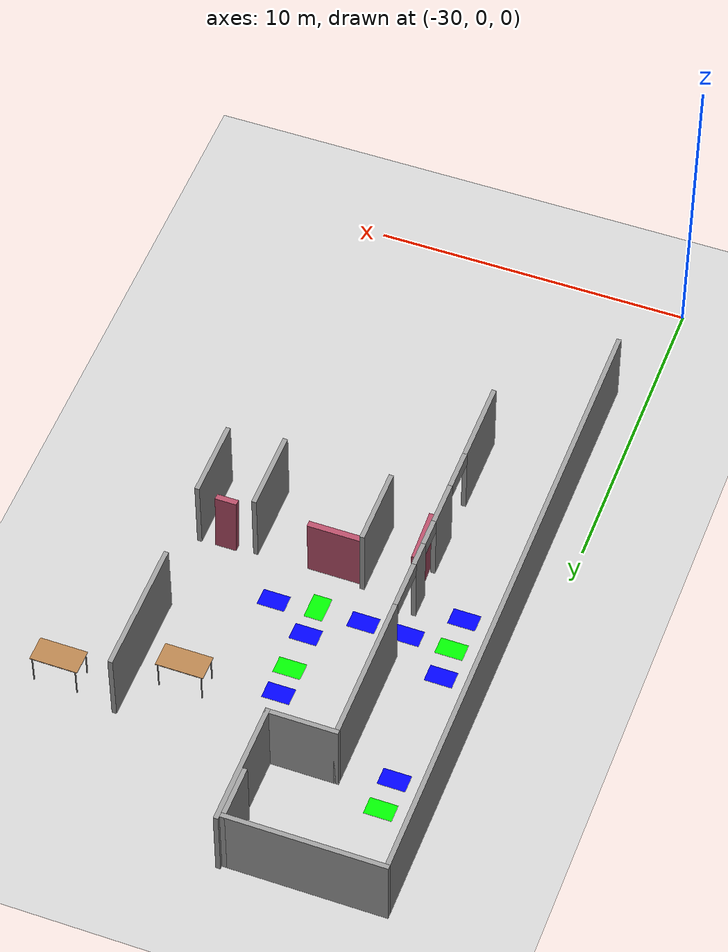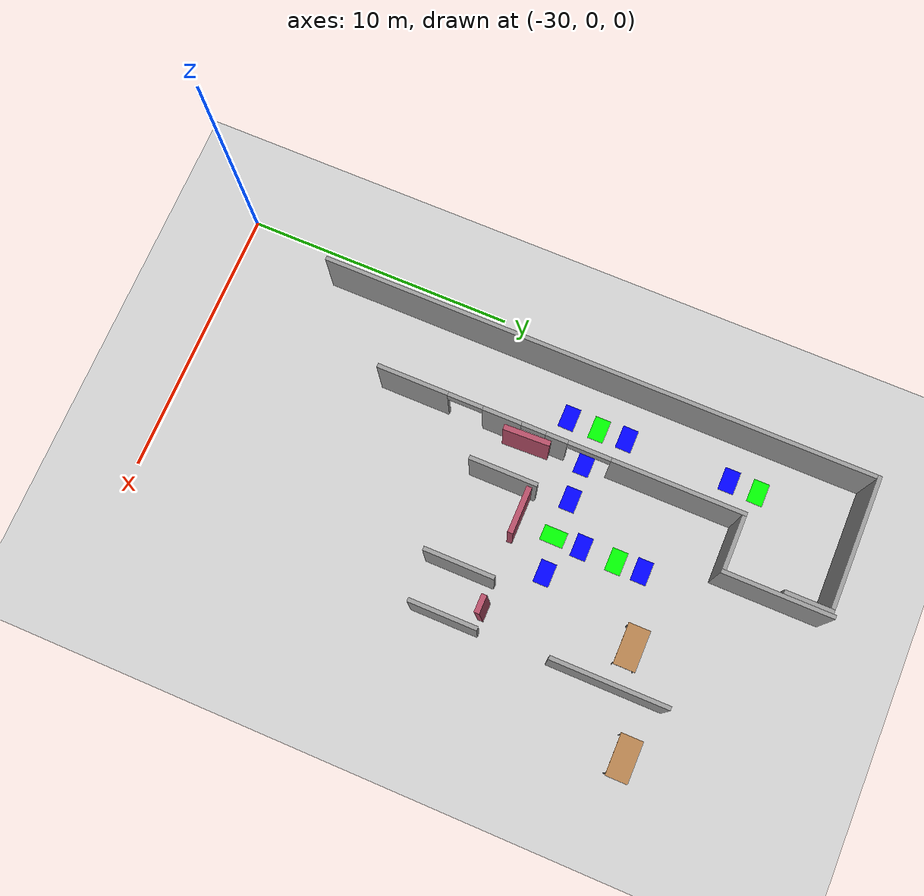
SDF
<sdf version="1.6">
 <world name="default">
  <model name="ground_plane">
   <pose>0 0 0.001 0 -0 0</pose>
   <static>1</static>
   <link name="link">
    <collision name="collision">
     <geometry><plane><normal>0 0 1</normal><size>100 100</size></plane></geometry>
     <surface><friction><ode><mu>100</mu><mu2>50</mu2></ode></friction></surface>
    </collision>
    <visual name="visual">
     <cast_shadows>0</cast_shadows>
     <geometry><plane><normal>0 0 1</normal><size>100 100</size></plane></geometry>
     <material>
      <script><uri>file://media/materials/scripts/gazebo.material</uri><name>Gazebo/Grey</name></script>
     </material>
    </visual>
   </link>
  </model>
  <model name="table">
   <static>1</static>
   <link name="link">
    <collision name="surface">
     <pose>0 0 1 0 -0 0</pose>
     <geometry><box><size>1.5 0.8 0.03</size></box></geometry>
     <surface><friction><ode><mu>0.6</mu><mu2>0.6</mu2></ode></friction></surface>
    </collision>
    <visual name="visual1">
     <pose>0 0 1 0 -0 0</pose>
     <geometry><box><size>1.5 0.8 0.03</size></box></geometry>
     <material>
      <script><uri>file://media/materials/scripts/gazebo.material</uri><name>Gazebo/Wood</name></script>
     </material>
    </visual>
    <collision name="front_left_leg">
     <pose>0.68 0.38 0.5 0 -0 0</pose>
     <geometry><cylinder><radius>0.02</radius><length>1</length></cylinder></geometry>
    </collision>
    <visual name="front_left_leg">
     <pose>0.68 0.38 0.5 0 -0 0</pose>
     <geometry><cylinder><radius>0.02</radius><length>1</length></cylinder></geometry>
     <material>
      <script><uri>file://media/materials/scripts/gazebo.material</uri><name>Gazebo/Grey</name></script>
     </material>
    </visual>
    <collision name="front_right_leg">
     <pose>0.68 -0.38 0.5 0 -0 0</pose>
     <geometry><cylinder><radius>0.02</radius><length>1</length></cylinder></geometry>
    </collision>
    <visual name="front_right_leg">
     <pose>0.68 -0.38 0.5 0 -0 0</pose>
     <geometry><cylinder><radius>0.02</radius><length>1</length></cylinder></geometry>
     <material>
      <script><uri>file://media/materials/scripts/gazebo.material</uri><name>Gazebo/Grey</name></script>
     </material>
    </visual>
    <collision name="back_right_leg">
     <pose>-0.68 -0.38 0.5 0 -0 0</pose>
     <geometry><cylinder><radius>0.02</radius><length>1</length></cylinder></geometry>
    </collision>
    <visual name="back_right_leg">
     <pose>-0.68 -0.38 0.5 0 -0 0</pose>
     <geometry><cylinder><radius>0.02</radius><length>1</length></cylinder></geometry>
     <material>
      <script><uri>file://media/materials/scripts/gazebo.material</uri><name>Gazebo/Grey</name></script>
     </material>
    </visual>
    <collision name="back_left_leg">
     <pose>-0.68 0.38 0.5 0 -0 0</pose>
     <geometry><cylinder><radius>0.02</radius><length>1</length></cylinder></geometry>
    </collision>
    <visual name="back_left_leg">
     <pose>-0.68 0.38 0.5 0 -0 0</pose>
     <geometry><cylinder><radius>0.02</radius><length>1</length></cylinder></geometry>
     <material>
      <script><uri>file://media/materials/scripts/gazebo.material</uri><name>Gazebo/Grey</name></script>
     </material>
    </visual>
   </link>
   <pose>-20.6493 18.5224 0.001 0 -0 0</pose>
  </model>
  <model name="table_0">
   <static>1</static>
   <link name="link">
    <collision name="surface">
     <pose>0 0 1 0 -0 0</pose>
     <geometry><box><size>1.5 0.8 0.03</size></box></geometry>
     <surface><friction><ode><mu>0.6</mu><mu2>0.6</mu2></ode></friction></surface>
    </collision>
    <visual name="visual1">
     <pose>0 0 1 0 -0 0</pose>
     <geometry><box><size>1.5 0.8 0.03</size></box></geometry>
     <material>
      <script><uri>file://media/materials/scripts/gazebo.material</uri><name>Gazebo/Wood</name></script>
     </material>
    </visual>
    <collision name="front_left_leg">
     <pose>0.68 0.38 0.5 0 -0 0</pose>
     <geometry><cylinder><radius>0.02</radius><length>1</length></cylinder></geometry>
    </collision>
    <visual name="front_left_leg">
     <pose>0.68 0.38 0.5 0 -0 0</pose>
     <geometry><cylinder><radius>0.02</radius><length>1</length></cylinder></geometry>
     <material>
      <script><uri>file://media/materials/scripts/gazebo.material</uri><name>Gazebo/Grey</name></script>
     </material>
    </visual>
    <collision name="front_right_leg">
     <pose>0.68 -0.38 0.5 0 -0 0</pose>
     <geometry><cylinder><radius>0.02</radius><length>1</length></cylinder></geometry>
    </collision>
    <visual name="front_right_leg">
     <pose>0.68 -0.38 0.5 0 -0 0</pose>
     <geometry><cylinder><radius>0.02</radius><length>1</length></cylinder></geometry>
     <material>
      <script><uri>file://media/materials/scripts/gazebo.material</uri><name>Gazebo/Grey</name></script>
     </material>
    </visual>
    <collision name="back_right_leg">
     <pose>-0.68 -0.38 0.5 0 -0 0</pose>
     <geometry><cylinder><radius>0.02</radius><length>1</length></cylinder></geometry>
    </collision>
    <visual name="back_right_leg">
     <pose>-0.68 -0.38 0.5 0 -0 0</pose>
     <geometry><cylinder><radius>0.02</radius><length>1</length></cylinder></geometry>
     <material>
      <script><uri>file://media/materials/scripts/gazebo.material</uri><name>Gazebo/Grey</name></script>
     </material>
    </visual>
    <collision name="back_left_leg">
     <pose>-0.68 0.38 0.5 0 -0 0</pose>
     <geometry><cylinder><radius>0.02</radius><length>1</length></cylinder></geometry>
    </collision>
    <visual name="back_left_leg">
     <pose>-0.68 0.38 0.5 0 -0 0</pose>
     <geometry><cylinder><radius>0.02</radius><length>1</length></cylinder></geometry>
     <material>
      <script><uri>file://media/materials/scripts/gazebo.material</uri><name>Gazebo/Grey</name></script>
     </material>
    </visual>
   </link>
   <pose>-17.1552 19.6086 0.001 0 -0 0</pose>
  </model>
  <model name="intersection_3">
   <link name="link">
    <pose>0 0 0.001 0 -0 0</pose>
    <inertial>
     <mass>0.0352517</mass>
     <inertia>
      <ixx>0.000997067</ixx>
      <ixy>0</ixy>
      <ixz>0</ixz>
      <iyy>0.00220147</iyy>
      <iyz>0</iyz>
      <izz>0.0031692</izz>
     </inertia>
     <pose>0 0 0.001 0 -0 0</pose>
    </inertial>
    <visual name="visual">
     <geometry><box><size>0.862743 0.578289 1e-06</size></box></geometry>
     <material>
      <script><name>Gazebo/Grey</name><uri>file://media/materials/scripts/gazebo.material</uri></script>
      <ambient>0 0 1 1</ambient>
      <diffuse>0 0 1 1</diffuse>
      <specular>0 0 1 1</specular>
      <emissive>0 0 1 1</emissive>
      <shader type="vertex"><normal_map>__default__</normal_map></shader>
     </material>
     <pose>0 0 0.001 0 -0 0</pose>
    </visual>
    <collision name="collision">
     <pose>0 0 0.001 0 -0 0</pose>
     <geometry><box><size>0.862743 0.578289 0.000477</size></box></geometry>
     <surface>
      <friction>
       <ode><mu>1</mu><mu2>1</mu2><fdir1>0 0 0</fdir1><slip1>0</slip1><slip2>0</slip2></ode>
       <torsional>
        <coefficient>1</coefficient>
        <patch_radius>0</patch_radius>
        <surface_radius>0</surface_radius>
        <use_patch_radius>1</use_patch_radius>
        <ode><slip>0</slip></ode>
       </torsional>
      </friction>
      <bounce><restitution_coefficient>0</restitution_coefficient><threshold>1e+06</threshold></bounce>
      <contact>
       <collide_without_contact>0</collide_without_contact>
       <collide_without_contact_bitmask>1</collide_without_contact_bitmask>
       <collide_bitmask>1</collide_bitmask>
       <ode>
        <soft_cfm>0</soft_cfm>
        <soft_erp>0.2</soft_erp>
        <kp>1e+13</kp>
        <kd>1</kd>
        <max_vel>0.01</max_vel>
        <min_depth>0</min_depth>
       </ode>
       <bullet>
        <split_impulse>1</split_impulse>
        <split_impulse_penetration_threshold>-0.01</split_impulse_penetration_threshold>
        <soft_cfm>0</soft_cfm>
        <soft_erp>0.2</soft_erp>
        <kp>1e+13</kp>
        <kd>1</kd>
       </bullet>
      </contact>
     </surface>
    </collision>
   </link>
   <static>1</static>
   <pose>-23.3338 15.7036 0 0 -0 0</pose>
  </model>
  <model name="doorOutside_2_clone">
   <link name="link">
    <pose>0.155539 -0.366282 0.216958 0 -0 0</pose>
    <inertial>
     <mass>2.13199</mass>
     <inertia>
      <ixx>0.452656</ixx>
      <ixy>0</ixy>
      <ixz>0</ixz>
      <iyy>0.796738</iyy>
      <iyz>0</iyz>
      <izz>0.699414</izz>
     </inertia>
     <pose>0 0 0.001 0 -0 0</pose>
    </inertial>
    <visual name="visual">
     <geometry><box><size>1.71368 0.198843 2.05986</size></box></geometry>
     <material>
      <script><name>Gazebo/Grey</name><uri>file://media/materials/scripts/gazebo.material</uri></script>
      <ambient>0.7 0.3 0.4 1</ambient>
      <diffuse>0.7 0.7 0.7 1</diffuse>
      <specular>0.01 0.01 0.01 1</specular>
      <emissive>0 0 0 1</emissive>
      <shader type="vertex"><normal_map>__default__</normal_map></shader>
      <lighting>0</lighting>
     </material>
     <pose>0 0 0.001 0 -0 0</pose>
    </visual>
    <collision name="collision">
     <pose>0 0 0.001 0 -0 0</pose>
     <geometry><box><size>1.71368 0.198843 2.05986</size></box></geometry>
     <surface>
      <friction>
       <ode><mu>1</mu><mu2>1</mu2><fdir1>0 0 0</fdir1><slip1>0</slip1><slip2>0</slip2></ode>
       <torsional>
        <coefficient>1</coefficient>
        <patch_radius>0</patch_radius>
        <surface_radius>0</surface_radius>
        <use_patch_radius>1</use_patch_radius>
        <ode><slip>0</slip></ode>
       </torsional>
      </friction>
      <bounce><restitution_coefficient>0</restitution_coefficient><threshold>1e+06</threshold></bounce>
      <contact>
       <collide_without_contact>0</collide_without_contact>
       <collide_without_contact_bitmask>1</collide_without_contact_bitmask>
       <collide_bitmask>1</collide_bitmask>
       <ode>
        <soft_cfm>0</soft_cfm>
        <soft_erp>0.2</soft_erp>
        <kp>1e+13</kp>
        <kd>1</kd>
        <max_vel>0.01</max_vel>
        <min_depth>0</min_depth>
       </ode>
       <bullet>
        <split_impulse>1</split_impulse>
        <split_impulse_penetration_threshold>-0.01</split_impulse_penetration_threshold>
        <soft_cfm>0</soft_cfm>
        <soft_erp>0.2</soft_erp>
        <kp>1e+13</kp>
        <kd>1</kd>
       </bullet>
      </contact>
     </surface>
    </collision>
   </link>
   <static>0</static>
   <pose>-26.2132 12.3617 0.81197 0 4e-06 1.60531</pose>
  </model>
  <model name="doorOutside_2_clone_0">
   <link name="link">
    <pose>0.155539 -0.366282 0.216958 0 -0 0</pose>
    <inertial>
     <mass>2.13199</mass>
     <inertia>
      <ixx>0.452656</ixx>
      <ixy>0</ixy>
      <ixz>0</ixz>
      <iyy>0.796738</iyy>
      <iyz>0</iyz>
      <izz>0.699414</izz>
     </inertia>
     <pose>0 0 0.001 0 -0 0</pose>
    </inertial>
    <visual name="visual">
     <geometry><box><size>1.71368 0.198843 2.05986</size></box></geometry>
     <material>
      <script><name>Gazebo/Grey</name><uri>file://media/materials/scripts/gazebo.material</uri></script>
      <ambient>0.7 0.3 0.4 1</ambient>
      <diffuse>0.7 0.7 0.7 1</diffuse>
      <specular>0.01 0.01 0.01 1</specular>
      <emissive>0 0 0 1</emissive>
      <shader type="vertex"><normal_map>__default__</normal_map></shader>
      <lighting>0</lighting>
     </material>
     <pose>0 0 0.001 0 -0 0</pose>
    </visual>
    <collision name="collision">
     <pose>0 0 0.001 0 -0 0</pose>
     <geometry><box><size>1.71368 0.198843 2.05986</size></box></geometry>
     <surface>
      <friction>
       <ode><mu>1</mu><mu2>1</mu2><fdir1>0 0 0</fdir1><slip1>0</slip1><slip2>0</slip2></ode>
       <torsional>
        <coefficient>1</coefficient>
        <patch_radius>0</patch_radius>
        <surface_radius>0</surface_radius>
        <use_patch_radius>1</use_patch_radius>
        <ode><slip>0</slip></ode>
       </torsional>
      </friction>
      <bounce><restitution_coefficient>0</restitution_coefficient><threshold>1e+06</threshold></bounce>
      <contact>
       <collide_without_contact>0</collide_without_contact>
       <collide_without_contact_bitmask>1</collide_without_contact_bitmask>
       <collide_bitmask>1</collide_bitmask>
       <ode>
        <soft_cfm>0</soft_cfm>
        <soft_erp>0.2</soft_erp>
        <kp>1e+13</kp>
        <kd>1</kd>
        <max_vel>0.01</max_vel>
        <min_depth>0</min_depth>
       </ode>
       <bullet>
        <split_impulse>1</split_impulse>
        <split_impulse_penetration_threshold>-0.01</split_impulse_penetration_threshold>
        <soft_cfm>0</soft_cfm>
        <soft_erp>0.2</soft_erp>
        <kp>1e+13</kp>
        <kd>1</kd>
       </bullet>
      </contact>
     </surface>
    </collision>
   </link>
   <static>0</static>
   <pose>-23.205 12.9227 0.811967 0 -5e-06 3.14136</pose>
  </model>
  <model name="doorInside_1">
   <link name="link">
    <pose>0.712274 -0.220649 0.216958 0 -0 0</pose>
    <inertial>
     <mass>0.840612</mass>
     <inertia>
      <ixx>0.178476</ixx>
      <ixy>0</ixy>
      <ixz>0</ixz>
      <iyy>0.140406</iyy>
      <iyz>0</iyz>
      <izz>0.102032</izz>
     </inertia>
     <pose>0 0 0.001 0 -0 0</pose>
    </inertial>
    <visual name="visual">
     <geometry><box><size>0.675678 0.198843 2.05986</size></box></geometry>
     <material>
      <script><name>Gazebo/Grey</name><uri>file://media/materials/scripts/gazebo.material</uri></script>
      <ambient>0.7 0.3 0.4 1</ambient>
      <diffuse>0.7 0.7 0.7 1</diffuse>
      <specular>0.01 0.01 0.01 1</specular>
      <emissive>1 0 0 1</emissive>
      <shader type="vertex"><normal_map>__default__</normal_map></shader>
      <lighting>0</lighting>
     </material>
     <pose>0 0 0.001 0 -0 0</pose>
    </visual>
    <collision name="collision">
     <pose>0 0 0.001 0 -0 0</pose>
     <geometry><box><size>0.675678 0.198843 2.05986</size></box></geometry>
     <surface>
      <friction>
       <ode><mu>1</mu><mu2>1</mu2><fdir1>0 0 0</fdir1><slip1>0</slip1><slip2>0</slip2></ode>
       <torsional>
        <coefficient>1</coefficient>
        <patch_radius>0</patch_radius>
        <surface_radius>0</surface_radius>
        <use_patch_radius>1</use_patch_radius>
        <ode><slip>0</slip></ode>
       </torsional>
      </friction>
      <bounce><restitution_coefficient>0</restitution_coefficient><threshold>1e+06</threshold></bounce>
      <contact>
       <collide_without_contact>0</collide_without_contact>
       <collide_without_contact_bitmask>1</collide_without_contact_bitmask>
       <collide_bitmask>1</collide_bitmask>
       <ode>
        <soft_cfm>0</soft_cfm>
        <soft_erp>0.2</soft_erp>
        <kp>1e+13</kp>
        <kd>1</kd>
        <max_vel>0.01</max_vel>
        <min_depth>0</min_depth>
       </ode>
       <bullet>
        <split_impulse>1</split_impulse>
        <split_impulse_penetration_threshold>-0.01</split_impulse_penetration_threshold>
        <soft_cfm>0</soft_cfm>
        <soft_erp>0.2</soft_erp>
        <kp>1e+13</kp>
        <kd>1</kd>
       </bullet>
      </contact>
     </surface>
    </collision>
   </link>
   <static>0</static>
   <pose>-20.6352 13.5916 0.830944 0.064612 0 1e-06</pose>
  </model>
  <model name="corridor">
   <link name="link">
    <pose>0 0 0.001 0 -0 0</pose>
    <inertial>
     <mass>0.0352517</mass>
     <inertia>
      <ixx>0.00099707</ixx>
      <ixy>0</ixy>
      <ixz>0</ixz>
      <iyy>0.00220147</iyy>
      <iyz>0</iyz>
      <izz>0.0031692</izz>
     </inertia>
     <pose>0 0 0.001 0 -0 0</pose>
    </inertial>
    <visual name="visual">
     <geometry><box><size>0.862743 0.578289 1e-06</size></box></geometry>
     <material>
      <script><name>Gazebo/Grey</name><uri>file://media/materials/scripts/gazebo.material</uri></script>
      <ambient>0 1 0 1</ambient>
      <diffuse>0 1 0 1</diffuse>
      <specular>0 1 0 1</specular>
      <emissive>0 1 0 1</emissive>
      <shader type="vertex"><normal_map>__default__</normal_map></shader>
     </material>
     <pose>0 0 0.001 0 -0 0</pose>
    </visual>
    <collision name="collision">
     <pose>0 0 0.001 0 -0 0</pose>
     <geometry><box><size>0.862743 0.578289 0.000477</size></box></geometry>
     <surface>
      <friction>
       <ode><mu>1</mu><mu2>1</mu2><fdir1>0 0 0</fdir1><slip1>0</slip1><slip2>0</slip2></ode>
       <torsional>
        <coefficient>1</coefficient>
        <patch_radius>0</patch_radius>
        <surface_radius>0</surface_radius>
        <use_patch_radius>1</use_patch_radius>
        <ode><slip>0</slip></ode>
       </torsional>
      </friction>
      <bounce><restitution_coefficient>0</restitution_coefficient><threshold>1e+06</threshold></bounce>
      <contact>
       <collide_without_contact>0</collide_without_contact>
       <collide_without_contact_bitmask>1</collide_without_contact_bitmask>
       <collide_bitmask>1</collide_bitmask>
       <ode>
        <soft_cfm>0</soft_cfm>
        <soft_erp>0.2</soft_erp>
        <kp>1e+13</kp>
        <kd>1</kd>
        <max_vel>0.01</max_vel>
        <min_depth>0</min_depth>
       </ode>
       <bullet>
        <split_impulse>1</split_impulse>
        <split_impulse_penetration_threshold>-0.01</split_impulse_penetration_threshold>
        <soft_cfm>0</soft_cfm>
        <soft_erp>0.2</soft_erp>
        <kp>1e+13</kp>
        <kd>1</kd>
       </bullet>
      </contact>
     </surface>
    </collision>
   </link>
   <static>1</static>
   <pose>-27.5631 20.7542 0 0 -0 0</pose>
  </model>
  <model name="corridor_0">
   <link name="link">
    <pose>0 0 0.001 0 -0 0</pose>
    <inertial>
     <mass>0.0352517</mass>
     <inertia>
      <ixx>0.00099707</ixx>
      <ixy>0</ixy>
      <ixz>0</ixz>
      <iyy>0.00220147</iyy>
      <iyz>0</iyz>
      <izz>0.0031692</izz>
     </inertia>
     <pose>0 0 0.001 0 -0 0</pose>
    </inertial>
    <visual name="visual">
     <geometry><box><size>0.862743 0.578289 1e-06</size></box></geometry>
     <material>
      <script><name>Gazebo/Grey</name><uri>file://media/materials/scripts/gazebo.material</uri></script>
      <ambient>0 1 0 1</ambient>
      <diffuse>0 1 0 1</diffuse>
      <specular>0 1 0 1</specular>
      <emissive>0 1 0 1</emissive>
      <shader type="vertex"><normal_map>__default__</normal_map></shader>
     </material>
     <pose>0 0 0.001 0 -0 0</pose>
    </visual>
    <collision name="collision">
     <pose>0 0 0.001 0 -0 0</pose>
     <geometry><box><size>0.862743 0.578289 0.000477</size></box></geometry>
     <surface>
      <friction>
       <ode><mu>1</mu><mu2>1</mu2><fdir1>0 0 0</fdir1><slip1>0</slip1><slip2>0</slip2></ode>
       <torsional>
        <coefficient>1</coefficient>
        <patch_radius>0</patch_radius>
        <surface_radius>0</surface_radius>
        <use_patch_radius>1</use_patch_radius>
        <ode><slip>0</slip></ode>
       </torsional>
      </friction>
      <bounce><restitution_coefficient>0</restitution_coefficient><threshold>1e+06</threshold></bounce>
      <contact>
       <collide_without_contact>0</collide_without_contact>
       <collide_without_contact_bitmask>1</collide_without_contact_bitmask>
       <collide_bitmask>1</collide_bitmask>
       <ode>
        <soft_cfm>0</soft_cfm>
        <soft_erp>0.2</soft_erp>
        <kp>1e+13</kp>
        <kd>1</kd>
        <max_vel>0.01</max_vel>
        <min_depth>0</min_depth>
       </ode>
       <bullet>
        <split_impulse>1</split_impulse>
        <split_impulse_penetration_threshold>-0.01</split_impulse_penetration_threshold>
        <soft_cfm>0</soft_cfm>
        <soft_erp>0.2</soft_erp>
        <kp>1e+13</kp>
        <kd>1</kd>
       </bullet>
      </contact>
     </surface>
    </collision>
   </link>
   <static>1</static>
   <pose>-27.5417 14.7047 0 0 -0 0</pose>
  </model>
  <model name="corridor_22">
   <link name="link">
    <pose>0 0 0.001 0 -0 0</pose>
    <inertial>
     <mass>0.0352517</mass>
     <inertia>
      <ixx>0.00099707</ixx>
      <ixy>0</ixy>
      <ixz>0</ixz>
      <iyy>0.00220147</iyy>
      <iyz>0</iyz>
      <izz>0.0031692</izz>
     </inertia>
     <pose>0 0 0.001 0 -0 0</pose>
    </inertial>
    <visual name="visual">
     <geometry><box><size>0.862743 0.578289 1e-06</size></box></geometry>
     <material>
      <script><name>Gazebo/Grey</name><uri>file://media/materials/scripts/gazebo.material</uri></script>
      <ambient>0 1 0 1</ambient>
      <diffuse>0 1 0 1</diffuse>
      <specular>0 1 0 1</specular>
      <emissive>0 1 0 1</emissive>
      <shader type="vertex"><normal_map>__default__</normal_map></shader>
     </material>
     <pose>0 0 0.001 0 -0 0</pose>
    </visual>
    <collision name="collision">
     <pose>0 0 0.001 0 -0 0</pose>
     <geometry><box><size>0.862743 0.578289 0.000477</size></box></geometry>
     <surface>
      <friction>
       <ode><mu>1</mu><mu2>1</mu2><fdir1>0 0 0</fdir1><slip1>0</slip1><slip2>0</slip2></ode>
       <torsional>
        <coefficient>1</coefficient>
        <patch_radius>0</patch_radius>
        <surface_radius>0</surface_radius>
        <use_patch_radius>1</use_patch_radius>
        <ode><slip>0</slip></ode>
       </torsional>
      </friction>
      <bounce><restitution_coefficient>0</restitution_coefficient><threshold>1e+06</threshold></bounce>
      <contact>
       <collide_without_contact>0</collide_without_contact>
       <collide_without_contact_bitmask>1</collide_without_contact_bitmask>
       <collide_bitmask>1</collide_bitmask>
       <ode>
        <soft_cfm>0</soft_cfm>
        <soft_erp>0.2</soft_erp>
        <kp>1e+13</kp>
        <kd>1</kd>
        <max_vel>0.01</max_vel>
        <min_depth>0</min_depth>
       </ode>
       <bullet>
        <split_impulse>1</split_impulse>
        <split_impulse_penetration_threshold>-0.01</split_impulse_penetration_threshold>
        <soft_cfm>0</soft_cfm>
        <soft_erp>0.2</soft_erp>
        <kp>1e+13</kp>
        <kd>1</kd>
       </bullet>
      </contact>
     </surface>
    </collision>
   </link>
   <static>1</static>
   <pose>-23.3171 14.6521 0 0 0 -1.57432</pose>
  </model>
  <model name="intersection_29">
   <link name="link">
    <pose>0 0 0.001 0 -0 0</pose>
    <inertial>
     <mass>0.0352517</mass>
     <inertia>
      <ixx>0.000997067</ixx>
      <ixy>0</ixy>
      <ixz>0</ixz>
      <iyy>0.00220147</iyy>
      <iyz>0</iyz>
      <izz>0.0031692</izz>
     </inertia>
     <pose>0 0 0.001 0 -0 0</pose>
    </inertial>
    <visual name="visual">
     <geometry><box><size>0.862743 0.578289 1e-06</size></box></geometry>
     <material>
      <script><name>Gazebo/Grey</name><uri>file://media/materials/scripts/gazebo.material</uri></script>
      <ambient>0 0 1 1</ambient>
      <diffuse>0 0 1 1</diffuse>
      <specular>0 0 1 1</specular>
      <emissive>0 0 1 1</emissive>
      <shader type="vertex"><normal_map>__default__</normal_map></shader>
     </material>
     <pose>0 0 0.001 0 -0 0</pose>
    </visual>
    <collision name="collision">
     <pose>0 0 0.001 0 -0 0</pose>
     <geometry><box><size>0.862743 0.578289 0.000477</size></box></geometry>
     <surface>
      <friction>
       <ode><mu>1</mu><mu2>1</mu2><fdir1>0 0 0</fdir1><slip1>0</slip1><slip2>0</slip2></ode>
       <torsional>
        <coefficient>1</coefficient>
        <patch_radius>0</patch_radius>
        <surface_radius>0</surface_radius>
        <use_patch_radius>1</use_patch_radius>
        <ode><slip>0</slip></ode>
       </torsional>
      </friction>
      <bounce><restitution_coefficient>0</restitution_coefficient><threshold>1e+06</threshold></bounce>
      <contact>
       <collide_without_contact>0</collide_without_contact>
       <collide_without_contact_bitmask>1</collide_without_contact_bitmask>
       <collide_bitmask>1</collide_bitmask>
       <ode>
        <soft_cfm>0</soft_cfm>
        <soft_erp>0.2</soft_erp>
        <kp>1e+13</kp>
        <kd>1</kd>
        <max_vel>0.01</max_vel>
        <min_depth>0</min_depth>
       </ode>
       <bullet>
        <split_impulse>1</split_impulse>
        <split_impulse_penetration_threshold>-0.01</split_impulse_penetration_threshold>
        <soft_cfm>0</soft_cfm>
        <soft_erp>0.2</soft_erp>
        <kp>1e+13</kp>
        <kd>1</kd>
       </bullet>
      </contact>
     </surface>
    </collision>
   </link>
   <static>1</static>
   <pose>-27.5317 13.5615 0 0 -0 0</pose>
  </model>
  <model name="intersection_31">
   <link name="link">
    <pose>0 0 0.001 0 -0 0</pose>
    <inertial>
     <mass>0.0352517</mass>
     <inertia>
      <ixx>0.000997067</ixx>
      <ixy>0</ixy>
      <ixz>0</ixz>
      <iyy>0.00220147</iyy>
      <iyz>0</iyz>
      <izz>0.0031692</izz>
     </inertia>
     <pose>0 0 0.001 0 -0 0</pose>
    </inertial>
    <visual name="visual">
     <geometry><box><size>0.862743 0.578289 1e-06</size></box></geometry>
     <material>
      <script><name>Gazebo/Grey</name><uri>file://media/materials/scripts/gazebo.material</uri></script>
      <ambient>0 0 1 1</ambient>
      <diffuse>0 0 1 1</diffuse>
      <specular>0 0 1 1</specular>
      <emissive>0 0 1 1</emissive>
      <shader type="vertex"><normal_map>__default__</normal_map></shader>
     </material>
     <pose>0 0 0.001 0 -0 0</pose>
    </visual>
    <collision name="collision">
     <pose>0 0 0.001 0 -0 0</pose>
     <geometry><box><size>0.862743 0.578289 0.000477</size></box></geometry>
     <surface>
      <friction>
       <ode><mu>1</mu><mu2>1</mu2><fdir1>0 0 0</fdir1><slip1>0</slip1><slip2>0</slip2></ode>
       <torsional>
        <coefficient>1</coefficient>
        <patch_radius>0</patch_radius>
        <surface_radius>0</surface_radius>
        <use_patch_radius>1</use_patch_radius>
        <ode><slip>0</slip></ode>
       </torsional>
      </friction>
      <bounce><restitution_coefficient>0</restitution_coefficient><threshold>1e+06</threshold></bounce>
      <contact>
       <collide_without_contact>0</collide_without_contact>
       <collide_without_contact_bitmask>1</collide_without_contact_bitmask>
       <collide_bitmask>1</collide_bitmask>
       <ode>
        <soft_cfm>0</soft_cfm>
        <soft_erp>0.2</soft_erp>
        <kp>1e+13</kp>
        <kd>1</kd>
        <max_vel>0.01</max_vel>
        <min_depth>0</min_depth>
       </ode>
       <bullet>
        <split_impulse>1</split_impulse>
        <split_impulse_penetration_threshold>-0.01</split_impulse_penetration_threshold>
        <soft_cfm>0</soft_cfm>
        <soft_erp>0.2</soft_erp>
        <kp>1e+13</kp>
        <kd>1</kd>
       </bullet>
      </contact>
     </surface>
    </collision>
   </link>
   <static>1</static>
   <pose>-27.5907 15.7521 0 0 -0 0</pose>
  </model>
  <model name="intersection_32">
   <link name="link">
    <pose>0 0 0.001 0 -0 0</pose>
    <inertial>
     <mass>0.0352517</mass>
     <inertia>
      <ixx>0.000997067</ixx>
      <ixy>0</ixy>
      <ixz>0</ixz>
      <iyy>0.00220147</iyy>
      <iyz>0</iyz>
      <izz>0.0031692</izz>
     </inertia>
     <pose>0 0 0.001 0 -0 0</pose>
    </inertial>
    <visual name="visual">
     <geometry><box><size>0.862743 0.578289 1e-06</size></box></geometry>
     <material>
      <script><name>Gazebo/Grey</name><uri>file://media/materials/scripts/gazebo.material</uri></script>
      <ambient>0 0 1 1</ambient>
      <diffuse>0 0 1 1</diffuse>
      <specular>0 0 1 1</specular>
      <emissive>0 0 1 1</emissive>
      <shader type="vertex"><normal_map>__default__</normal_map></shader>
     </material>
     <pose>0 0 0.001 0 -0 0</pose>
    </visual>
    <collision name="collision">
     <pose>0 0 0.001 0 -0 0</pose>
     <geometry><box><size>0.862743 0.578289 0.000477</size></box></geometry>
     <surface>
      <friction>
       <ode><mu>1</mu><mu2>1</mu2><fdir1>0 0 0</fdir1><slip1>0</slip1><slip2>0</slip2></ode>
       <torsional>
        <coefficient>1</coefficient>
        <patch_radius>0</patch_radius>
        <surface_radius>0</surface_radius>
        <use_patch_radius>1</use_patch_radius>
        <ode><slip>0</slip></ode>
       </torsional>
      </friction>
      <bounce><restitution_coefficient>0</restitution_coefficient><threshold>1e+06</threshold></bounce>
      <contact>
       <collide_without_contact>0</collide_without_contact>
       <collide_without_contact_bitmask>1</collide_without_contact_bitmask>
       <collide_bitmask>1</collide_bitmask>
       <ode>
        <soft_cfm>0</soft_cfm>
        <soft_erp>0.2</soft_erp>
        <kp>1e+13</kp>
        <kd>1</kd>
        <max_vel>0.01</max_vel>
        <min_depth>0</min_depth>
       </ode>
       <bullet>
        <split_impulse>1</split_impulse>
        <split_impulse_penetration_threshold>-0.01</split_impulse_penetration_threshold>
        <soft_cfm>0</soft_cfm>
        <soft_erp>0.2</soft_erp>
        <kp>1e+13</kp>
        <kd>1</kd>
       </bullet>
      </contact>
     </surface>
    </collision>
   </link>
   <static>1</static>
   <pose>-27.5764 19.6662 0 0 -0 0</pose>
  </model>
  <model name="intersection_37">
   <link name="link">
    <pose>0 0 0.001 0 -0 0</pose>
    <inertial>
     <mass>0.0352517</mass>
     <inertia>
      <ixx>0.000997067</ixx>
      <ixy>0</ixy>
      <ixz>0</ixz>
      <iyy>0.00220147</iyy>
      <iyz>0</iyz>
      <izz>0.0031692</izz>
     </inertia>
     <pose>0 0 0.001 0 -0 0</pose>
    </inertial>
    <visual name="visual">
     <geometry><box><size>0.862743 0.578289 1e-06</size></box></geometry>
     <material>
      <script><name>Gazebo/Grey</name><uri>file://media/materials/scripts/gazebo.material</uri></script>
      <ambient>0 0 1 1</ambient>
      <diffuse>0 0 1 1</diffuse>
      <specular>0 0 1 1</specular>
      <emissive>0 0 1 1</emissive>
      <shader type="vertex"><normal_map>__default__</normal_map></shader>
     </material>
     <pose>0 0 0.001 0 -0 0</pose>
    </visual>
    <collision name="collision">
     <pose>0 0 0.001 0 -0 0</pose>
     <geometry><box><size>0.862743 0.578289 0.000477</size></box></geometry>
     <surface>
      <friction>
       <ode><mu>1</mu><mu2>1</mu2><fdir1>0 0 0</fdir1><slip1>0</slip1><slip2>0</slip2></ode>
       <torsional>
        <coefficient>1</coefficient>
        <patch_radius>0</patch_radius>
        <surface_radius>0</surface_radius>
        <use_patch_radius>1</use_patch_radius>
        <ode><slip>0</slip></ode>
       </torsional>
      </friction>
      <bounce><restitution_coefficient>0</restitution_coefficient><threshold>1e+06</threshold></bounce>
      <contact>
       <collide_without_contact>0</collide_without_contact>
       <collide_without_contact_bitmask>1</collide_without_contact_bitmask>
       <collide_bitmask>1</collide_bitmask>
       <ode>
        <soft_cfm>0</soft_cfm>
        <soft_erp>0.2</soft_erp>
        <kp>1e+13</kp>
        <kd>1</kd>
        <max_vel>0.01</max_vel>
        <min_depth>0</min_depth>
       </ode>
       <bullet>
        <split_impulse>1</split_impulse>
        <split_impulse_penetration_threshold>-0.01</split_impulse_penetration_threshold>
        <soft_cfm>0</soft_cfm>
        <soft_erp>0.2</soft_erp>
        <kp>1e+13</kp>
        <kd>1</kd>
       </bullet>
      </contact>
     </surface>
    </collision>
   </link>
   <static>1</static>
   <pose>-26.1649 14.6821 0 0 -0 0</pose>
  </model>
  <model name="intersection_38">
   <link name="link">
    <pose>0 0 0.001 0 -0 0</pose>
    <inertial>
     <mass>0.0352517</mass>
     <inertia>
      <ixx>0.000997067</ixx>
      <ixy>0</ixy>
      <ixz>0</ixz>
      <iyy>0.00220147</iyy>
      <iyz>0</iyz>
      <izz>0.0031692</izz>
     </inertia>
     <pose>0 0 0.001 0 -0 0</pose>
    </inertial>
    <visual name="visual">
     <geometry><box><size>0.862743 0.578289 1e-06</size></box></geometry>
     <material>
      <script><name>Gazebo/Grey</name><uri>file://media/materials/scripts/gazebo.material</uri></script>
      <ambient>0 0 1 1</ambient>
      <diffuse>0 0 1 1</diffuse>
      <specular>0 0 1 1</specular>
      <emissive>0 0 1 1</emissive>
      <shader type="vertex"><normal_map>__default__</normal_map></shader>
     </material>
     <pose>0 0 0.001 0 -0 0</pose>
    </visual>
    <collision name="collision">
     <pose>0 0 0.001 0 -0 0</pose>
     <geometry><box><size>0.862743 0.578289 0.000477</size></box></geometry>
     <surface>
      <friction>
       <ode><mu>1</mu><mu2>1</mu2><fdir1>0 0 0</fdir1><slip1>0</slip1><slip2>0</slip2></ode>
       <torsional>
        <coefficient>1</coefficient>
        <patch_radius>0</patch_radius>
        <surface_radius>0</surface_radius>
        <use_patch_radius>1</use_patch_radius>
        <ode><slip>0</slip></ode>
       </torsional>
      </friction>
      <bounce><restitution_coefficient>0</restitution_coefficient><threshold>1e+06</threshold></bounce>
      <contact>
       <collide_without_contact>0</collide_without_contact>
       <collide_without_contact_bitmask>1</collide_without_contact_bitmask>
       <collide_bitmask>1</collide_bitmask>
       <ode>
        <soft_cfm>0</soft_cfm>
        <soft_erp>0.2</soft_erp>
        <kp>1e+13</kp>
        <kd>1</kd>
        <max_vel>0.01</max_vel>
        <min_depth>0</min_depth>
       </ode>
       <bullet>
        <split_impulse>1</split_impulse>
        <split_impulse_penetration_threshold>-0.01</split_impulse_penetration_threshold>
        <soft_cfm>0</soft_cfm>
        <soft_erp>0.2</soft_erp>
        <kp>1e+13</kp>
        <kd>1</kd>
       </bullet>
      </contact>
     </surface>
    </collision>
   </link>
   <static>1</static>
   <pose>-24.7735 14.6986 0 0 -0 0</pose>
  </model>
  <model name="intersection_56">
   <link name="link">
    <pose>0 0 0.001 0 -0 0</pose>
    <inertial>
     <mass>0.0352517</mass>
     <inertia>
      <ixx>0.000997067</ixx>
      <ixy>0</ixy>
      <ixz>0</ixz>
      <iyy>0.00220147</iyy>
      <iyz>0</iyz>
      <izz>0.0031692</izz>
     </inertia>
     <pose>0 0 0.001 0 -0 0</pose>
    </inertial>
    <visual name="visual">
     <geometry><box><size>0.862743 0.578289 1e-06</size></box></geometry>
     <material>
      <script><name>Gazebo/Grey</name><uri>file://media/materials/scripts/gazebo.material</uri></script>
      <ambient>0 0 1 1</ambient>
      <diffuse>0 0 1 1</diffuse>
      <specular>0 0 1 1</specular>
      <emissive>0 0 1 1</emissive>
      <shader type="vertex"><normal_map>__default__</normal_map></shader>
     </material>
     <pose>0 0 0.001 0 -0 0</pose>
    </visual>
    <collision name="collision">
     <pose>0 0 0.001 0 -0 0</pose>
     <geometry><box><size>0.862743 0.578289 0.000477</size></box></geometry>
     <surface>
      <friction>
       <ode><mu>1</mu><mu2>1</mu2><fdir1>0 0 0</fdir1><slip1>0</slip1><slip2>0</slip2></ode>
       <torsional>
        <coefficient>1</coefficient>
        <patch_radius>0</patch_radius>
        <surface_radius>0</surface_radius>
        <use_patch_radius>1</use_patch_radius>
        <ode><slip>0</slip></ode>
       </torsional>
      </friction>
      <bounce><restitution_coefficient>0</restitution_coefficient><threshold>1e+06</threshold></bounce>
      <contact>
       <collide_without_contact>0</collide_without_contact>
       <collide_without_contact_bitmask>1</collide_without_contact_bitmask>
       <collide_bitmask>1</collide_bitmask>
       <ode>
        <soft_cfm>0</soft_cfm>
        <soft_erp>0.2</soft_erp>
        <kp>1e+13</kp>
        <kd>1</kd>
        <max_vel>0.01</max_vel>
        <min_depth>0</min_depth>
       </ode>
       <bullet>
        <split_impulse>1</split_impulse>
        <split_impulse_penetration_threshold>-0.01</split_impulse_penetration_threshold>
        <soft_cfm>0</soft_cfm>
        <soft_erp>0.2</soft_erp>
        <kp>1e+13</kp>
        <kd>1</kd>
       </bullet>
      </contact>
     </surface>
    </collision>
   </link>
   <static>1</static>
   <pose>-21.9892 14.8551 0 0 -0 0</pose>
  </model>
  <model name="Se1_cut">
   <pose>3.62364 13.9276 0 0 -0 0</pose>
   <link name="Wall_0">
    <collision name="Wall_0_Collision">
     <geometry><box><size>1.75 0.15 2.5</size></box></geometry>
     <pose>0 0 1.25 0 -0 0</pose>
    </collision>
    <visual name="Wall_0_Visual">
     <pose>0 0 1.25 0 -0 0</pose>
     <geometry><box><size>1.75 0.15 2.5</size></box></geometry>
     <material>
      <script><uri>file://media/materials/scripts/gazebo.material</uri><name>Gazebo/Grey</name></script>
      <ambient>1 1 1 1</ambient>
     </material>
    </visual>
    <pose>-27.7314 9.325 0 0 -0 1.5708</pose>
   </link>
   <link name="Wall_1">
    <collision name="Wall_1_Collision">
     <geometry><box><size>5 0.15 2.5</size></box></geometry>
     <pose>0 0 1.25 0 -0 0</pose>
    </collision>
    <visual name="Wall_1_Visual">
     <pose>0 0 1.25 0 -0 0</pose>
     <geometry><box><size>5 0.15 2.5</size></box></geometry>
     <material>
      <script><uri>file://media/materials/scripts/gazebo.material</uri><name>Gazebo/Grey</name></script>
      <ambient>1 1 1 1</ambient>
     </material>
    </visual>
    <pose>-30.1564 10.125 0 0 -0 3.14159</pose>
   </link>
   <link name="Wall_18">
    <collision name="Wall_18_Collision">
     <geometry><box><size>2.5 0.15 2.5</size></box></geometry>
     <pose>0 0 1.25 0 -0 0</pose>
    </collision>
    <visual name="Wall_18_Visual">
     <pose>0 0 1.25 0 -0 0</pose>
     <geometry><box><size>2.5 0.15 2.5</size></box></geometry>
     <material>
      <script><uri>file://media/materials/scripts/gazebo.material</uri><name>Gazebo/Grey</name></script>
      <ambient>1 1 1 1</ambient>
     </material>
    </visual>
    <pose>-27.916 -1.63307 0 0 0 -1.5708</pose>
   </link>
   <link name="Wall_2">
    <collision name="Wall_2_Collision">
     <geometry><box><size>20.5 0.15 2.5</size></box></geometry>
     <pose>0 0 1.25 0 -0 0</pose>
    </collision>
    <visual name="Wall_2_Visual">
     <pose>0 0 1.25 0 -0 0</pose>
     <geometry><box><size>20.5 0.15 2.5</size></box></geometry>
     <material>
      <script><uri>file://media/materials/scripts/gazebo.material</uri><name>Gazebo/Grey</name></script>
      <ambient>1 1 1 1</ambient>
     </material>
    </visual>
    <pose>-32.5814 -0.05 0 0 0 -1.5708</pose>
   </link>
   <link name="Wall_20">
    <collision name="Wall_20_Collision">
     <geometry><box><size>2.57604 0.15 2.5</size></box></geometry>
     <pose>0 0 1.25 0 -0 0</pose>
    </collision>
    <visual name="Wall_20_Visual">
     <pose>0 0 1.25 0 -0 0</pose>
     <geometry><box><size>2.57604 0.15 2.5</size></box></geometry>
     <material>
      <script><uri>file://media/materials/scripts/gazebo.material</uri><name>Gazebo/Grey</name></script>
      <ambient>1 1 1 1</ambient>
     </material>
    </visual>
    <pose>-24.4704 -1.79415 0 0 0 -1.5708</pose>
   </link>
   <link name="Wall_23">
    <collision name="Wall_23_Collision">
     <geometry><box><size>2.5 0.15 2.5</size></box></geometry>
     <pose>0 0 1.25 0 -0 0</pose>
    </collision>
    <visual name="Wall_23_Visual">
     <pose>0 0 1.25 0 -0 0</pose>
     <geometry><box><size>2.5 0.15 2.5</size></box></geometry>
     <material>
      <script><uri>file://media/materials/scripts/gazebo.material</uri><name>Gazebo/Grey</name></script>
      <ambient>1 1 1 1</ambient>
     </material>
    </visual>
    <pose>-22.711 -1.63352 0 0 0 -1.5708</pose>
   </link>
   <link name="Wall_49">
    <collision name="Wall_49_Collision">
     <geometry><box><size>4.25 0.15 2.5</size></box></geometry>
     <pose>0 0 1.25 0 -0 0</pose>
    </collision>
    <visual name="Wall_49_Visual">
     <pose>0 0 1.25 0 -0 0</pose>
     <geometry><box><size>4.25 0.15 2.5</size></box></geometry>
     <material>
      <script><uri>file://media/materials/scripts/gazebo.material</uri><name>Gazebo/Grey</name></script>
      <ambient>1 1 1 1</ambient>
     </material>
    </visual>
    <pose>-22.7583 4.23959 0 0 0 -1.5708</pose>
   </link>
   <link name="Wall_6">
    <collision name="Wall_6_Collision">
     <geometry><box><size>4 0.15 2.5</size></box></geometry>
     <pose>0 0 1.25 0 -0 0</pose>
    </collision>
    <visual name="Wall_6_Visual">
     <pose>0 0 1.25 0 -0 0</pose>
     <geometry><box><size>4 0.15 2.5</size></box></geometry>
     <material>
      <script><uri>file://media/materials/scripts/gazebo.material</uri><name>Gazebo/Grey</name></script>
      <ambient>1 1 1 1</ambient>
     </material>
    </visual>
    <pose>-27.5814 8.3 0 0 -0 1.5708</pose>
   </link>
   <link name="Wall_8">
    <collision name="Wall_8_Collision">
     <geometry><box><size>2.25 0.15 2.5</size></box></geometry>
     <pose>0 0 1.25 0 -0 0</pose>
    </collision>
    <visual name="Wall_8_Visual">
     <pose>0 0 1.25 0 -0 0</pose>
     <geometry><box><size>2.25 0.15 2.5</size></box></geometry>
     <material>
      <script><uri>file://media/materials/scripts/gazebo.material</uri><name>Gazebo/Grey</name></script>
      <ambient>1 1 1 1</ambient>
     </material>
    </visual>
    <pose>-28.6314 6.375 0 0 -0 3.14159</pose>
   </link>
   <link name="Wall_9">
    <pose>-29.6814 -0.3 0 0 0 -1.5708</pose>
    <visual name="Wall_9_Visual_0">
     <pose>-4.31652 0 1.25 0 -0 0</pose>
     <geometry><box><size>4.86697 0.15 2.5</size></box></geometry>
     <material>
      <script><uri>file://media/materials/scripts/gazebo.material</uri><name>Gazebo/Grey</name></script>
      <ambient>1 1 1 1</ambient>
     </material>
    </visual>
    <collision name="Wall_9_Collision_0">
     <geometry><box><size>4.86697 0.15 2.5</size></box></geometry>
     <pose>-4.31652 0 1.25 0 -0 0</pose>
    </collision>
    <visual name="Wall_9_Visual_1">
     <pose>0.092822 0 1.25 0 -0 0</pose>
     <geometry><box><size>0.80276 0.15 2.5</size></box></geometry>
     <material>
      <script><uri>file://media/materials/scripts/gazebo.material</uri><name>Gazebo/Grey</name></script>
      <ambient>1 1 1 1</ambient>
     </material>
    </visual>
    <collision name="Wall_9_Collision_1">
     <geometry><box><size>0.80276 0.15 2.5</size></box></geometry>
     <pose>0.092822 0 1.25 0 -0 0</pose>
    </collision>
    <visual name="Wall_9_Visual_2">
     <pose>2.10756 0 1.25 0 -0 0</pose>
     <geometry><box><size>1.42671 0.15 2.5</size></box></geometry>
     <material>
      <script><uri>file://media/materials/scripts/gazebo.material</uri><name>Gazebo/Grey</name></script>
      <ambient>1 1 1 1</ambient>
     </material>
    </visual>
    <collision name="Wall_9_Collision_2">
     <geometry><box><size>1.42671 0.15 2.5</size></box></geometry>
     <pose>2.10756 0 1.25 0 -0 0</pose>
    </collision>
    <visual name="Wall_9_Visual_3">
     <pose>5.43207 0 1.25 0 -0 0</pose>
     <geometry><box><size>2.63587 0.15 2.5</size></box></geometry>
     <material>
      <script><uri>file://media/materials/scripts/gazebo.material</uri><name>Gazebo/Grey</name></script>
      <ambient>1 1 1 1</ambient>
     </material>
    </visual>
    <collision name="Wall_9_Collision_3">
     <geometry><box><size>2.63587 0.15 2.5</size></box></geometry>
     <pose>5.43207 0 1.25 0 -0 0</pose>
    </collision>
    <visual name="Wall_9_Visual_4">
     <pose>-1.0958 0 2.25 0 -0 0</pose>
     <geometry><box><size>1.57448 0.15 0.5</size></box></geometry>
     <material>
      <script><uri>file://media/materials/scripts/gazebo.material</uri><name>Gazebo/Grey</name></script>
      <ambient>1 1 1 1</ambient>
     </material>
    </visual>
    <collision name="Wall_9_Collision_4">
     <geometry><box><size>1.57448 0.15 0.5</size></box></geometry>
     <pose>-1.0958 0 2.25 0 -0 0</pose>
    </collision>
    <visual name="Wall_9_Visual_5">
     <pose>0.944202 0 2.25 0 -0 0</pose>
     <geometry><box><size>0.9 0.15 0.5</size></box></geometry>
     <material>
      <script><uri>file://media/materials/scripts/gazebo.material</uri><name>Gazebo/Grey</name></script>
      <ambient>1 1 1 1</ambient>
     </material>
    </visual>
    <collision name="Wall_9_Collision_5">
     <geometry><box><size>0.9 0.15 0.5</size></box></geometry>
     <pose>0.944202 0 2.25 0 -0 0</pose>
    </collision>
    <visual name="Wall_9_Visual_6">
     <pose>3.46752 0 2.25 0 -0 0</pose>
     <geometry><box><size>1.29322 0.15 0.5</size></box></geometry>
     <material>
      <script><uri>file://media/materials/scripts/gazebo.material</uri><name>Gazebo/Grey</name></script>
      <ambient>1 1 1 1</ambient>
     </material>
    </visual>
    <collision name="Wall_9_Collision_6">
     <geometry><box><size>1.29322 0.15 0.5</size></box></geometry>
     <pose>3.46752 0 2.25 0 -0 0</pose>
    </collision>
   </link>
   <static>1</static>
  </model>
  <model name="intersection_58">
   <link name="link">
    <pose>0 0 0.001 0 -0 0</pose>
    <inertial>
     <mass>0.0352517</mass>
     <inertia>
      <ixx>0.000997067</ixx>
      <ixy>0</ixy>
      <ixz>0</ixz>
      <iyy>0.00220147</iyy>
      <iyz>0</iyz>
      <izz>0.0031692</izz>
     </inertia>
     <pose>0 0 0.001 0 -0 0</pose>
    </inertial>
    <visual name="visual">
     <geometry><box><size>0.862743 0.578289 1e-06</size></box></geometry>
     <material>
      <script><name>Gazebo/Grey</name><uri>file://media/materials/scripts/gazebo.material</uri></script>
      <ambient>0 0 1 1</ambient>
      <diffuse>0 0 1 1</diffuse>
      <specular>0 0 1 1</specular>
      <emissive>0 0 1 1</emissive>
      <shader type="vertex"><normal_map>__default__</normal_map></shader>
     </material>
     <pose>0 0 0.001 0 -0 0</pose>
    </visual>
    <collision name="collision">
     <pose>0 0 0.001 0 -0 0</pose>
     <geometry><box><size>0.862743 0.578289 0.000477</size></box></geometry>
     <surface>
      <friction>
       <ode><mu>1</mu><mu2>1</mu2><fdir1>0 0 0</fdir1><slip1>0</slip1><slip2>0</slip2></ode>
       <torsional>
        <coefficient>1</coefficient>
        <patch_radius>0</patch_radius>
        <surface_radius>0</surface_radius>
        <use_patch_radius>1</use_patch_radius>
        <ode><slip>0</slip></ode>
       </torsional>
      </friction>
      <bounce><restitution_coefficient>0</restitution_coefficient><threshold>1e+06</threshold></bounce>
      <contact>
       <collide_without_contact>0</collide_without_contact>
       <collide_without_contact_bitmask>1</collide_without_contact_bitmask>
       <collide_bitmask>1</collide_bitmask>
       <ode>
        <soft_cfm>0</soft_cfm>
        <soft_erp>0.2</soft_erp>
        <kp>1e+13</kp>
        <kd>1</kd>
        <max_vel>0.01</max_vel>
        <min_depth>0</min_depth>
       </ode>
       <bullet>
        <split_impulse>1</split_impulse>
        <split_impulse_penetration_threshold>-0.01</split_impulse_penetration_threshold>
        <soft_cfm>0</soft_cfm>
        <soft_erp>0.2</soft_erp>
        <kp>1e+13</kp>
        <kd>1</kd>
       </bullet>
      </contact>
     </surface>
    </collision>
   </link>
   <static>1</static>
   <pose>-23.354 17.9685 0 0 -0 0</pose>
  </model>
  <model name="corridor_0_clone_0">
   <link name="link">
    <pose>0 0 0.001 0 -0 0</pose>
    <inertial>
     <mass>0.0352517</mass>
     <inertia>
      <ixx>0.00099707</ixx>
      <ixy>0</ixy>
      <ixz>0</ixz>
      <iyy>0.00220147</iyy>
      <iyz>0</iyz>
      <izz>0.0031692</izz>
     </inertia>
     <pose>0 0 0.001 0 -0 0</pose>
    </inertial>
    <visual name="visual">
     <geometry><box><size>0.862743 0.578289 1e-06</size></box></geometry>
     <material>
      <script><name>Gazebo/Grey</name><uri>file://media/materials/scripts/gazebo.material</uri></script>
      <ambient>0 1 0 1</ambient>
      <diffuse>0 1 0 1</diffuse>
      <specular>0 1 0 1</specular>
      <emissive>0 1 0 1</emissive>
      <shader type="vertex"><normal_map>__default__</normal_map></shader>
     </material>
     <pose>0 0 0.001 0 -0 0</pose>
    </visual>
    <collision name="collision">
     <pose>0 0 0.001 0 -0 0</pose>
     <geometry><box><size>0.862743 0.578289 0.000477</size></box></geometry>
     <surface>
      <friction>
       <ode><mu>1</mu><mu2>1</mu2><fdir1>0 0 0</fdir1><slip1>0</slip1><slip2>0</slip2></ode>
       <torsional>
        <coefficient>1</coefficient>
        <patch_radius>0</patch_radius>
        <surface_radius>0</surface_radius>
        <use_patch_radius>1</use_patch_radius>
        <ode><slip>0</slip></ode>
       </torsional>
      </friction>
      <bounce><restitution_coefficient>0</restitution_coefficient><threshold>1e+06</threshold></bounce>
      <contact>
       <collide_without_contact>0</collide_without_contact>
       <collide_without_contact_bitmask>1</collide_without_contact_bitmask>
       <collide_bitmask>1</collide_bitmask>
       <ode>
        <soft_cfm>0</soft_cfm>
        <soft_erp>0.2</soft_erp>
        <kp>1e+13</kp>
        <kd>1</kd>
        <max_vel>0.01</max_vel>
        <min_depth>0</min_depth>
       </ode>
       <bullet>
        <split_impulse>1</split_impulse>
        <split_impulse_penetration_threshold>-0.01</split_impulse_penetration_threshold>
        <soft_cfm>0</soft_cfm>
        <soft_erp>0.2</soft_erp>
        <kp>1e+13</kp>
        <kd>1</kd>
       </bullet>
      </contact>
     </surface>
    </collision>
   </link>
   <static>1</static>
   <pose>-23.333 17.0124 0 0 -0 0</pose>
  </model>
 </world>
</sdf>
